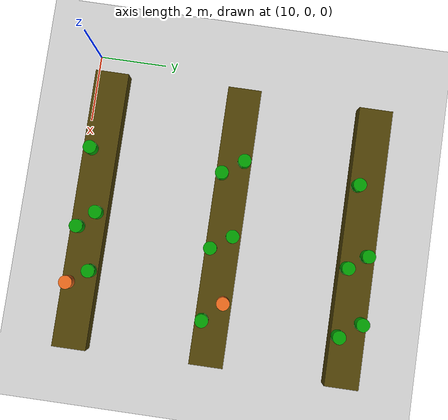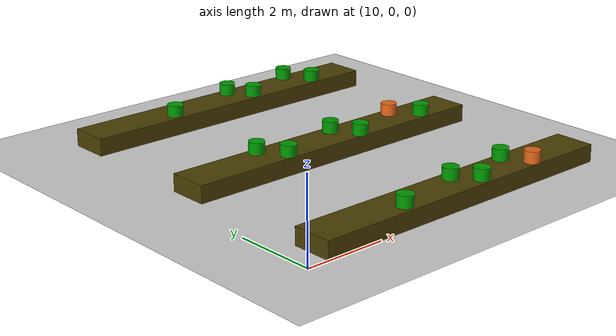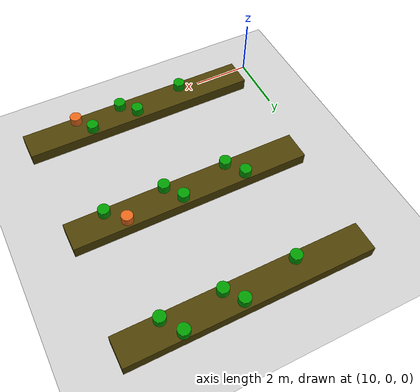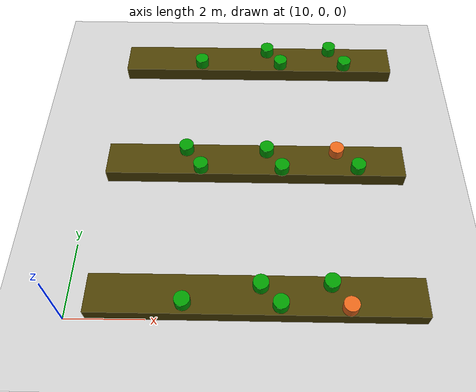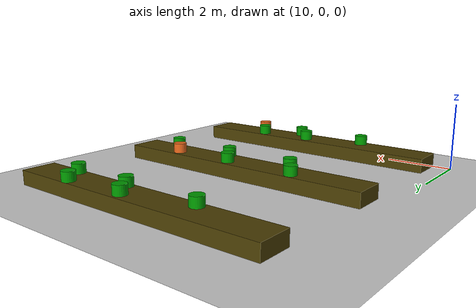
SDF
<sdf version="1.7">
 <world name="default">
  <model name="ground_plane">
   <static>1</static>
   <link name="link">
    <collision name="collision">
     <geometry><plane><normal>0 0 1</normal><size>100 100</size></plane></geometry>
     <surface><friction><ode><mu>100</mu><mu2>50</mu2></ode></friction></surface>
    </collision>
    <visual name="visual">
     <cast_shadows>0</cast_shadows>
     <geometry><plane><normal>0 0 1</normal><size>100 100</size></plane></geometry>
     <material>
      <script><uri>file://media/materials/scripts/gazebo.material</uri><name>Gazebo/Grey</name></script>
     </material>
    </visual>
   </link>
  </model>
  <model name="Test_Bench_brown_clone">
   <link name="link_1">
    <inertial>
     <mass>6.47546</mass>
     <inertia><ixx>0.639529</ixx><ixy>0</ixy><ixz>0</ixz><iyy>122.309</iyy><iyz>0</iyz><izz>122.749</izz></inertia>
    </inertial>
    <pose>0 4e-06 0 0 -0 0</pose>
    <visual name="visual">
     <geometry><box><size>8.26902 1 0.430283</size></box></geometry>
     <material>
      <lighting>1</lighting>
      <script><uri>file://media/materials/scripts/gazebo.material</uri><name>Gazebo/Grey</name></script>
      <shader type="pixel"><normal_map>__default__</normal_map></shader>
      <diffuse>0.298 0.247 0.016 1</diffuse>
      <ambient>0.3 0.3 0.3 1</ambient>
      <specular>0.01 0.01 0.01 1</specular>
      <emissive>0 0 0 1</emissive>
     </material>
    </visual>
    <collision name="collision">
     <geometry><box><size>8.26902 1 0.430283</size></box></geometry>
     <surface>
      <friction>
       <ode><mu>1</mu><mu2>1</mu2><fdir1>0 0 0</fdir1><slip1>0</slip1><slip2>0</slip2></ode>
       <torsional>
        <coefficient>1</coefficient>
        <patch_radius>0</patch_radius>
        <surface_radius>0</surface_radius>
        <use_patch_radius>1</use_patch_radius>
        <ode><slip>0</slip></ode>
       </torsional>
      </friction>
      <bounce><restitution_coefficient>0</restitution_coefficient><threshold>1e+06</threshold></bounce>
      <contact>
       <collide_without_contact>0</collide_without_contact>
       <collide_without_contact_bitmask>1</collide_without_contact_bitmask>
       <collide_bitmask>1</collide_bitmask>
       <ode>
        <soft_cfm>0</soft_cfm>
        <soft_erp>0.2</soft_erp>
        <kp>1e+13</kp>
        <kd>1</kd>
        <max_vel>0.01</max_vel>
        <min_depth>0</min_depth>
       </ode>
       <bullet>
        <split_impulse>1</split_impulse>
        <split_impulse_penetration_threshold>-0.01</split_impulse_penetration_threshold>
        <soft_cfm>0</soft_cfm>
        <soft_erp>0.2</soft_erp>
        <kp>1e+13</kp>
        <kd>1</kd>
       </bullet>
      </contact>
     </surface>
    </collision>
   </link>
   <static>0</static>
   <pose>14.6791 0.50719 0.213427 5.2e-05 -5e-06 -1e-05</pose>
  </model>
  <model name="Test_Bench_brown_clone_1">
   <link name="link_1">
    <inertial>
     <mass>6.47546</mass>
     <inertia><ixx>0.639529</ixx><ixy>0</ixy><ixz>0</ixz><iyy>122.309</iyy><iyz>0</iyz><izz>122.749</izz></inertia>
    </inertial>
    <pose>0 4e-06 0 0 -0 0</pose>
    <visual name="visual">
     <geometry><box><size>8.26902 1 0.430283</size></box></geometry>
     <material>
      <lighting>1</lighting>
      <script><uri>file://media/materials/scripts/gazebo.material</uri><name>Gazebo/Grey</name></script>
      <shader type="pixel"><normal_map>__default__</normal_map></shader>
      <diffuse>0.298 0.247 0.016 1</diffuse>
      <ambient>0.3 0.3 0.3 1</ambient>
      <specular>0.01 0.01 0.01 1</specular>
      <emissive>0 0 0 1</emissive>
     </material>
    </visual>
    <collision name="collision">
     <geometry><box><size>8.26902 1 0.430283</size></box></geometry>
     <surface>
      <friction>
       <ode><mu>1</mu><mu2>1</mu2><fdir1>0 0 0</fdir1><slip1>0</slip1><slip2>0</slip2></ode>
       <torsional>
        <coefficient>1</coefficient>
        <patch_radius>0</patch_radius>
        <surface_radius>0</surface_radius>
        <use_patch_radius>1</use_patch_radius>
        <ode><slip>0</slip></ode>
       </torsional>
      </friction>
      <bounce><restitution_coefficient>0</restitution_coefficient><threshold>1e+06</threshold></bounce>
      <contact>
       <collide_without_contact>0</collide_without_contact>
       <collide_without_contact_bitmask>1</collide_without_contact_bitmask>
       <collide_bitmask>1</collide_bitmask>
       <ode>
        <soft_cfm>0</soft_cfm>
        <soft_erp>0.2</soft_erp>
        <kp>1e+13</kp>
        <kd>1</kd>
        <max_vel>0.01</max_vel>
        <min_depth>0</min_depth>
       </ode>
       <bullet>
        <split_impulse>1</split_impulse>
        <split_impulse_penetration_threshold>-0.01</split_impulse_penetration_threshold>
        <soft_cfm>0</soft_cfm>
        <soft_erp>0.2</soft_erp>
        <kp>1e+13</kp>
        <kd>1</kd>
       </bullet>
      </contact>
     </surface>
    </collision>
   </link>
   <static>0</static>
   <pose>14.6227 4.52237 0.215141 0 -0 0</pose>
  </model>
  <model name="Test_Bench_brown_clone_3">
   <link name="link_1">
    <inertial>
     <mass>6.47546</mass>
     <inertia><ixx>0.639529</ixx><ixy>0</ixy><ixz>0</ixz><iyy>122.309</iyy><iyz>0</iyz><izz>122.749</izz></inertia>
    </inertial>
    <pose>0 4e-06 0 0 -0 0</pose>
    <visual name="visual">
     <geometry><box><size>8.26902 1 0.430283</size></box></geometry>
     <material>
      <lighting>1</lighting>
      <script><uri>file://media/materials/scripts/gazebo.material</uri><name>Gazebo/Grey</name></script>
      <shader type="pixel"><normal_map>__default__</normal_map></shader>
      <diffuse>0.298 0.247 0.016 1</diffuse>
      <ambient>0.3 0.3 0.3 1</ambient>
      <specular>0.01 0.01 0.01 1</specular>
      <emissive>0 0 0 1</emissive>
     </material>
    </visual>
    <collision name="collision">
     <geometry><box><size>8.26902 1 0.430283</size></box></geometry>
     <surface>
      <friction>
       <ode><mu>1</mu><mu2>1</mu2><fdir1>0 0 0</fdir1><slip1>0</slip1><slip2>0</slip2></ode>
       <torsional>
        <coefficient>1</coefficient>
        <patch_radius>0</patch_radius>
        <surface_radius>0</surface_radius>
        <use_patch_radius>1</use_patch_radius>
        <ode><slip>0</slip></ode>
       </torsional>
      </friction>
      <bounce><restitution_coefficient>0</restitution_coefficient><threshold>1e+06</threshold></bounce>
      <contact>
       <collide_without_contact>0</collide_without_contact>
       <collide_without_contact_bitmask>1</collide_without_contact_bitmask>
       <collide_bitmask>1</collide_bitmask>
       <ode>
        <soft_cfm>0</soft_cfm>
        <soft_erp>0.2</soft_erp>
        <kp>1e+13</kp>
        <kd>1</kd>
        <max_vel>0.01</max_vel>
        <min_depth>0</min_depth>
       </ode>
       <bullet>
        <split_impulse>1</split_impulse>
        <split_impulse_penetration_threshold>-0.01</split_impulse_penetration_threshold>
        <soft_cfm>0</soft_cfm>
        <soft_erp>0.2</soft_erp>
        <kp>1e+13</kp>
        <kd>1</kd>
       </bullet>
      </contact>
     </surface>
    </collision>
   </link>
   <static>0</static>
   <pose>14.6865 8.49522 0.21379 5.3e-05 -3e-06 8e-06</pose>
  </model>
  <model name="Test_pot_orange_clone">
   <link name="link_0">
    <inertial>
     <mass>0.044841</mass>
     <inertia>
      <ixx>0.00074807</ixx>
      <ixy>0</ixy>
      <ixz>0</ixz>
      <iyy>0.00074807</iyy>
      <iyz>0</iyz>
      <izz>0.00086495</izz>
     </inertia>
    </inertial>
    <pose>3e-06 1e-06 -0 0 -0 0</pose>
    <visual name="visual">
     <geometry><cylinder><radius>0.196415</radius><length>0.290612</length></cylinder></geometry>
     <material>
      <lighting>1</lighting>
      <script><uri>file://media/materials/scripts/gazebo.material</uri><name>Gazebo/Grey</name></script>
      <shader type="pixel"><normal_map>__default__</normal_map></shader>
      <ambient>0.3 0.3 0.3 1</ambient>
      <diffuse>0.9 0.4 0.1 1</diffuse>
      <specular>0.01 0.01 0.01 1</specular>
      <emissive>0 0 0 1</emissive>
     </material>
    </visual>
    <collision name="collision">
     <geometry><cylinder><radius>0.196415</radius><length>0.290612</length></cylinder></geometry>
     <surface>
      <friction>
       <ode><mu>1</mu><mu2>1</mu2><fdir1>0 0 0</fdir1><slip1>0</slip1><slip2>0</slip2></ode>
       <torsional>
        <coefficient>1</coefficient>
        <patch_radius>0</patch_radius>
        <surface_radius>0</surface_radius>
        <use_patch_radius>1</use_patch_radius>
        <ode><slip>0</slip></ode>
       </torsional>
      </friction>
      <bounce><restitution_coefficient>0</restitution_coefficient><threshold>1e+06</threshold></bounce>
      <contact>
       <collide_without_contact>0</collide_without_contact>
       <collide_without_contact_bitmask>1</collide_without_contact_bitmask>
       <collide_bitmask>1</collide_bitmask>
       <ode>
        <soft_cfm>0</soft_cfm>
        <soft_erp>0.2</soft_erp>
        <kp>1e+13</kp>
        <kd>1</kd>
        <max_vel>0.01</max_vel>
        <min_depth>0</min_depth>
       </ode>
       <bullet>
        <split_impulse>1</split_impulse>
        <split_impulse_penetration_threshold>-0.01</split_impulse_penetration_threshold>
        <soft_cfm>0</soft_cfm>
        <soft_erp>0.2</soft_erp>
        <kp>1e+13</kp>
        <kd>1</kd>
       </bullet>
      </contact>
     </surface>
    </collision>
   </link>
   <static>0</static>
   <pose>16.9073 0.195438 0.575586 -1.3e-05 8e-06 0.003965</pose>
  </model>
  <model name="Test_pot_green_clone_2">
   <link name="link_0">
    <inertial>
     <mass>0.044841</mass>
     <inertia>
      <ixx>0.00074807</ixx>
      <ixy>0</ixy>
      <ixz>0</ixz>
      <iyy>0.00074807</iyy>
      <iyz>0</iyz>
      <izz>0.00086495</izz>
     </inertia>
    </inertial>
    <pose>3e-06 1e-06 0 0 -0 0</pose>
    <visual name="visual">
     <geometry><cylinder><radius>0.196415</radius><length>0.290612</length></cylinder></geometry>
     <material>
      <lighting>1</lighting>
      <script><uri>file://media/materials/scripts/gazebo.material</uri><name>Gazebo/Grey</name></script>
      <shader type="pixel"><normal_map>__default__</normal_map></shader>
      <diffuse>0 0.6 0 0</diffuse>
      <ambient>0.3 0.3 0.3 1</ambient>
      <specular>0.01 0.01 0.01 1</specular>
      <emissive>0 0 0 1</emissive>
     </material>
    </visual>
    <collision name="collision">
     <geometry><cylinder><radius>0.196415</radius><length>0.290612</length></cylinder></geometry>
     <surface>
      <friction>
       <ode><mu>1</mu><mu2>1</mu2><fdir1>0 0 0</fdir1><slip1>0</slip1><slip2>0</slip2></ode>
       <torsional>
        <coefficient>1</coefficient>
        <patch_radius>0</patch_radius>
        <surface_radius>0</surface_radius>
        <use_patch_radius>1</use_patch_radius>
        <ode><slip>0</slip></ode>
       </torsional>
      </friction>
      <bounce><restitution_coefficient>0</restitution_coefficient><threshold>1e+06</threshold></bounce>
      <contact>
       <collide_without_contact>0</collide_without_contact>
       <collide_without_contact_bitmask>1</collide_without_contact_bitmask>
       <collide_bitmask>1</collide_bitmask>
       <ode>
        <soft_cfm>0</soft_cfm>
        <soft_erp>0.2</soft_erp>
        <kp>1e+13</kp>
        <kd>1</kd>
        <max_vel>0.01</max_vel>
        <min_depth>0</min_depth>
       </ode>
       <bullet>
        <split_impulse>1</split_impulse>
        <split_impulse_penetration_threshold>-0.01</split_impulse_penetration_threshold>
        <soft_cfm>0</soft_cfm>
        <soft_erp>0.2</soft_erp>
        <kp>1e+13</kp>
        <kd>1</kd>
       </bullet>
      </contact>
     </surface>
    </collision>
   </link>
   <static>0</static>
   <pose>17.442 4.22593 0.57559 6e-06 -2e-06 0.004827</pose>
  </model>
  <model name="Test_pot_green_clone_3">
   <link name="link_0">
    <inertial>
     <mass>0.044841</mass>
     <inertia>
      <ixx>0.00074807</ixx>
      <ixy>0</ixy>
      <ixz>0</ixz>
      <iyy>0.00074807</iyy>
      <iyz>0</iyz>
      <izz>0.00086495</izz>
     </inertia>
    </inertial>
    <pose>3e-06 1e-06 0 0 -0 0</pose>
    <visual name="visual">
     <geometry><cylinder><radius>0.196415</radius><length>0.290612</length></cylinder></geometry>
     <material>
      <lighting>1</lighting>
      <script><uri>file://media/materials/scripts/gazebo.material</uri><name>Gazebo/Grey</name></script>
      <shader type="pixel"><normal_map>__default__</normal_map></shader>
      <diffuse>0 0.6 0 0</diffuse>
      <ambient>0.3 0.3 0.3 1</ambient>
      <specular>0.01 0.01 0.01 1</specular>
      <emissive>0 0 0 1</emissive>
     </material>
    </visual>
    <collision name="collision">
     <geometry><cylinder><radius>0.196415</radius><length>0.290612</length></cylinder></geometry>
     <surface>
      <friction>
       <ode><mu>1</mu><mu2>1</mu2><fdir1>0 0 0</fdir1><slip1>0</slip1><slip2>0</slip2></ode>
       <torsional>
        <coefficient>1</coefficient>
        <patch_radius>0</patch_radius>
        <surface_radius>0</surface_radius>
        <use_patch_radius>1</use_patch_radius>
        <ode><slip>0</slip></ode>
       </torsional>
      </friction>
      <bounce><restitution_coefficient>0</restitution_coefficient><threshold>1e+06</threshold></bounce>
      <contact>
       <collide_without_contact>0</collide_without_contact>
       <collide_without_contact_bitmask>1</collide_without_contact_bitmask>
       <collide_bitmask>1</collide_bitmask>
       <ode>
        <soft_cfm>0</soft_cfm>
        <soft_erp>0.2</soft_erp>
        <kp>1e+13</kp>
        <kd>1</kd>
        <max_vel>0.01</max_vel>
        <min_depth>0</min_depth>
       </ode>
       <bullet>
        <split_impulse>1</split_impulse>
        <split_impulse_penetration_threshold>-0.01</split_impulse_penetration_threshold>
        <soft_cfm>0</soft_cfm>
        <soft_erp>0.2</soft_erp>
        <kp>1e+13</kp>
        <kd>1</kd>
       </bullet>
      </contact>
     </surface>
    </collision>
   </link>
   <static>0</static>
   <pose>16.909 8.82075 0.57559 5e-06 -4e-06 0.002469</pose>
  </model>
  <model name="Test_pot_green_clone_10">
   <link name="link_0">
    <inertial>
     <mass>0.044841</mass>
     <inertia>
      <ixx>0.00074807</ixx>
      <ixy>0</ixy>
      <ixz>0</ixz>
      <iyy>0.00074807</iyy>
      <iyz>0</iyz>
      <izz>0.00086495</izz>
     </inertia>
    </inertial>
    <pose>3e-06 1e-06 0 0 -0 0</pose>
    <visual name="visual">
     <geometry><cylinder><radius>0.196415</radius><length>0.290612</length></cylinder></geometry>
     <material>
      <lighting>1</lighting>
      <script><uri>file://media/materials/scripts/gazebo.material</uri><name>Gazebo/Grey</name></script>
      <shader type="pixel"><normal_map>__default__</normal_map></shader>
      <diffuse>0 0.6 0 0</diffuse>
      <ambient>0.3 0.3 0.3 1</ambient>
      <specular>0.01 0.01 0.01 1</specular>
      <emissive>0 0 0 1</emissive>
     </material>
    </visual>
    <collision name="collision">
     <geometry><cylinder><radius>0.196415</radius><length>0.290612</length></cylinder></geometry>
     <surface>
      <friction>
       <ode><mu>1</mu><mu2>1</mu2><fdir1>0 0 0</fdir1><slip1>0</slip1><slip2>0</slip2></ode>
       <torsional>
        <coefficient>1</coefficient>
        <patch_radius>0</patch_radius>
        <surface_radius>0</surface_radius>
        <use_patch_radius>1</use_patch_radius>
        <ode><slip>0</slip></ode>
       </torsional>
      </friction>
      <bounce><restitution_coefficient>0</restitution_coefficient><threshold>1e+06</threshold></bounce>
      <contact>
       <collide_without_contact>0</collide_without_contact>
       <collide_without_contact_bitmask>1</collide_without_contact_bitmask>
       <collide_bitmask>1</collide_bitmask>
       <ode>
        <soft_cfm>0</soft_cfm>
        <soft_erp>0.2</soft_erp>
        <kp>1e+13</kp>
        <kd>1</kd>
        <max_vel>0.01</max_vel>
        <min_depth>0</min_depth>
       </ode>
       <bullet>
        <split_impulse>1</split_impulse>
        <split_impulse_penetration_threshold>-0.01</split_impulse_penetration_threshold>
        <soft_cfm>0</soft_cfm>
        <soft_erp>0.2</soft_erp>
        <kp>1e+13</kp>
        <kd>1</kd>
       </bullet>
      </contact>
     </surface>
    </collision>
   </link>
   <static>0</static>
   <pose>16.4972 0.784061 0.57559 -6e-06 0 0.006482</pose>
  </model>
  <model name="Test_pot_green_clone_4_clone_1">
   <link name="link_0">
    <inertial>
     <mass>0.044841</mass>
     <inertia>
      <ixx>0.00074807</ixx>
      <ixy>0</ixy>
      <ixz>0</ixz>
      <iyy>0.00074807</iyy>
      <iyz>0</iyz>
      <izz>0.00086495</izz>
     </inertia>
    </inertial>
    <pose>3e-06 1e-06 0 0 -0 0</pose>
    <visual name="visual">
     <geometry><cylinder><radius>0.196415</radius><length>0.290612</length></cylinder></geometry>
     <material>
      <lighting>1</lighting>
      <script><uri>file://media/materials/scripts/gazebo.material</uri><name>Gazebo/Grey</name></script>
      <shader type="pixel"><normal_map>__default__</normal_map></shader>
      <diffuse>0 0.6 0 0</diffuse>
      <ambient>0.3 0.3 0.3 1</ambient>
      <specular>0.01 0.01 0.01 1</specular>
      <emissive>0 0 0 1</emissive>
     </material>
    </visual>
    <collision name="collision">
     <geometry><cylinder><radius>0.196415</radius><length>0.290612</length></cylinder></geometry>
     <surface>
      <friction>
       <ode><mu>1</mu><mu2>1</mu2><fdir1>0 0 0</fdir1><slip1>0</slip1><slip2>0</slip2></ode>
       <torsional>
        <coefficient>1</coefficient>
        <patch_radius>0</patch_radius>
        <surface_radius>0</surface_radius>
        <use_patch_radius>1</use_patch_radius>
        <ode><slip>0</slip></ode>
       </torsional>
      </friction>
      <bounce><restitution_coefficient>0</restitution_coefficient><threshold>1e+06</threshold></bounce>
      <contact>
       <collide_without_contact>0</collide_without_contact>
       <collide_without_contact_bitmask>1</collide_without_contact_bitmask>
       <collide_bitmask>1</collide_bitmask>
       <ode>
        <soft_cfm>0</soft_cfm>
        <soft_erp>0.2</soft_erp>
        <kp>1e+13</kp>
        <kd>1</kd>
        <max_vel>0.01</max_vel>
        <min_depth>0</min_depth>
       </ode>
       <bullet>
        <split_impulse>1</split_impulse>
        <split_impulse_penetration_threshold>-0.01</split_impulse_penetration_threshold>
        <soft_cfm>0</soft_cfm>
        <soft_erp>0.2</soft_erp>
        <kp>1e+13</kp>
        <kd>1</kd>
       </bullet>
      </contact>
     </surface>
    </collision>
   </link>
   <static>0</static>
   <pose>17.3521 8.1914 0.575596 2.9e-05 -0 0.012641</pose>
  </model>
  <model name="Test_pot_orange_clone_clone_0">
   <link name="link_0">
    <inertial>
     <mass>0.044841</mass>
     <inertia>
      <ixx>0.00074807</ixx>
      <ixy>0</ixy>
      <ixz>0</ixz>
      <iyy>0.00074807</iyy>
      <iyz>0</iyz>
      <izz>0.00086495</izz>
     </inertia>
    </inertial>
    <pose>3e-06 1e-06 -0 0 -0 0</pose>
    <visual name="visual">
     <geometry><cylinder><radius>0.196415</radius><length>0.290612</length></cylinder></geometry>
     <material>
      <lighting>1</lighting>
      <script><uri>file://media/materials/scripts/gazebo.material</uri><name>Gazebo/Grey</name></script>
      <shader type="pixel"><normal_map>__default__</normal_map></shader>
      <ambient>0.3 0.3 0.3 1</ambient>
      <diffuse>0.9 0.4 0.1 1</diffuse>
      <specular>0.01 0.01 0.01 1</specular>
      <emissive>0 0 0 1</emissive>
     </material>
    </visual>
    <collision name="collision">
     <geometry><cylinder><radius>0.196415</radius><length>0.290612</length></cylinder></geometry>
     <surface>
      <friction>
       <ode><mu>1</mu><mu2>1</mu2><fdir1>0 0 0</fdir1><slip1>0</slip1><slip2>0</slip2></ode>
       <torsional>
        <coefficient>1</coefficient>
        <patch_radius>0</patch_radius>
        <surface_radius>0</surface_radius>
        <use_patch_radius>1</use_patch_radius>
        <ode><slip>0</slip></ode>
       </torsional>
      </friction>
      <bounce><restitution_coefficient>0</restitution_coefficient><threshold>1e+06</threshold></bounce>
      <contact>
       <collide_without_contact>0</collide_without_contact>
       <collide_without_contact_bitmask>1</collide_without_contact_bitmask>
       <collide_bitmask>1</collide_bitmask>
       <ode>
        <soft_cfm>0</soft_cfm>
        <soft_erp>0.2</soft_erp>
        <kp>1e+13</kp>
        <kd>1</kd>
        <max_vel>0.01</max_vel>
        <min_depth>0</min_depth>
       </ode>
       <bullet>
        <split_impulse>1</split_impulse>
        <split_impulse_penetration_threshold>-0.01</split_impulse_penetration_threshold>
        <soft_cfm>0</soft_cfm>
        <soft_erp>0.2</soft_erp>
        <kp>1e+13</kp>
        <kd>1</kd>
       </bullet>
      </contact>
     </surface>
    </collision>
   </link>
   <static>0</static>
   <pose>16.8777 4.76661 0.575592 1.6e-05 2e-06 0.004168</pose>
  </model>
  <model name="Test_pot_green_clone_15">
   <link name="link_0">
    <inertial>
     <mass>0.044841</mass>
     <inertia>
      <ixx>0.00074807</ixx>
      <ixy>0</ixy>
      <ixz>0</ixz>
      <iyy>0.00074807</iyy>
      <iyz>0</iyz>
      <izz>0.00086495</izz>
     </inertia>
    </inertial>
    <pose>3e-06 1e-06 0 0 -0 0</pose>
    <visual name="visual">
     <geometry><cylinder><radius>0.196415</radius><length>0.290612</length></cylinder></geometry>
     <material>
      <lighting>1</lighting>
      <script><uri>file://media/materials/scripts/gazebo.material</uri><name>Gazebo/Grey</name></script>
      <shader type="pixel"><normal_map>__default__</normal_map></shader>
      <diffuse>0 0.6 0 0</diffuse>
      <ambient>0.3 0.3 0.3 1</ambient>
      <specular>0.01 0.01 0.01 1</specular>
      <emissive>0 0 0 1</emissive>
     </material>
    </visual>
    <collision name="collision">
     <geometry><cylinder><radius>0.196415</radius><length>0.290612</length></cylinder></geometry>
     <surface>
      <friction>
       <ode><mu>1</mu><mu2>1</mu2><fdir1>0 0 0</fdir1><slip1>0</slip1><slip2>0</slip2></ode>
       <torsional>
        <coefficient>1</coefficient>
        <patch_radius>0</patch_radius>
        <surface_radius>0</surface_radius>
        <use_patch_radius>1</use_patch_radius>
        <ode><slip>0</slip></ode>
       </torsional>
      </friction>
      <bounce><restitution_coefficient>0</restitution_coefficient><threshold>1e+06</threshold></bounce>
      <contact>
       <collide_without_contact>0</collide_without_contact>
       <collide_without_contact_bitmask>1</collide_without_contact_bitmask>
       <collide_bitmask>1</collide_bitmask>
       <ode>
        <soft_cfm>0</soft_cfm>
        <soft_erp>0.2</soft_erp>
        <kp>1e+13</kp>
        <kd>1</kd>
        <max_vel>0.01</max_vel>
        <min_depth>0</min_depth>
       </ode>
       <bullet>
        <split_impulse>1</split_impulse>
        <split_impulse_penetration_threshold>-0.01</split_impulse_penetration_threshold>
        <soft_cfm>0</soft_cfm>
        <soft_erp>0.2</soft_erp>
        <kp>1e+13</kp>
        <kd>1</kd>
       </bullet>
      </contact>
     </surface>
    </collision>
   </link>
   <static>0</static>
   <pose>12.925 0.266999 0.575587 -9e-06 -2e-06 0.012252</pose>
  </model>
  <model name="Test_pot_green_clone_17">
   <link name="link_0">
    <inertial>
     <mass>0.044841</mass>
     <inertia>
      <ixx>0.00074807</ixx>
      <ixy>0</ixy>
      <ixz>0</ixz>
      <iyy>0.00074807</iyy>
      <iyz>0</iyz>
      <izz>0.00086495</izz>
     </inertia>
    </inertial>
    <pose>3e-06 1e-06 0 0 -0 0</pose>
    <visual name="visual">
     <geometry><cylinder><radius>0.196415</radius><length>0.290612</length></cylinder></geometry>
     <material>
      <lighting>1</lighting>
      <script><uri>file://media/materials/scripts/gazebo.material</uri><name>Gazebo/Grey</name></script>
      <shader type="pixel"><normal_map>__default__</normal_map></shader>
      <diffuse>0 0.6 0 0</diffuse>
      <ambient>0.3 0.3 0.3 1</ambient>
      <specular>0.01 0.01 0.01 1</specular>
      <emissive>0 0 0 1</emissive>
     </material>
    </visual>
    <collision name="collision">
     <geometry><cylinder><radius>0.196415</radius><length>0.290612</length></cylinder></geometry>
     <surface>
      <friction>
       <ode><mu>1</mu><mu2>1</mu2><fdir1>0 0 0</fdir1><slip1>0</slip1><slip2>0</slip2></ode>
       <torsional>
        <coefficient>1</coefficient>
        <patch_radius>0</patch_radius>
        <surface_radius>0</surface_radius>
        <use_patch_radius>1</use_patch_radius>
        <ode><slip>0</slip></ode>
       </torsional>
      </friction>
      <bounce><restitution_coefficient>0</restitution_coefficient><threshold>1e+06</threshold></bounce>
      <contact>
       <collide_without_contact>0</collide_without_contact>
       <collide_without_contact_bitmask>1</collide_without_contact_bitmask>
       <collide_bitmask>1</collide_bitmask>
       <ode>
        <soft_cfm>0</soft_cfm>
        <soft_erp>0.2</soft_erp>
        <kp>1e+13</kp>
        <kd>1</kd>
        <max_vel>0.01</max_vel>
        <min_depth>0</min_depth>
       </ode>
       <bullet>
        <split_impulse>1</split_impulse>
        <split_impulse_penetration_threshold>-0.01</split_impulse_penetration_threshold>
        <soft_cfm>0</soft_cfm>
        <soft_erp>0.2</soft_erp>
        <kp>1e+13</kp>
        <kd>1</kd>
       </bullet>
      </contact>
     </surface>
    </collision>
   </link>
   <static>0</static>
   <pose>15.2592 0.236475 0.575589 3e-06 -0 0.013283</pose>
  </model>
  <model name="Test_pot_green_clone_18">
   <link name="link_0">
    <inertial>
     <mass>0.044841</mass>
     <inertia>
      <ixx>0.00074807</ixx>
      <ixy>0</ixy>
      <ixz>0</ixz>
      <iyy>0.00074807</iyy>
      <iyz>0</iyz>
      <izz>0.00086495</izz>
     </inertia>
    </inertial>
    <pose>3e-06 1e-06 0 0 -0 0</pose>
    <visual name="visual">
     <geometry><cylinder><radius>0.196415</radius><length>0.290612</length></cylinder></geometry>
     <material>
      <lighting>1</lighting>
      <script><uri>file://media/materials/scripts/gazebo.material</uri><name>Gazebo/Grey</name></script>
      <shader type="pixel"><normal_map>__default__</normal_map></shader>
      <diffuse>0 0.6 0 0</diffuse>
      <ambient>0.3 0.3 0.3 1</ambient>
      <specular>0.01 0.01 0.01 1</specular>
      <emissive>0 0 0 1</emissive>
     </material>
    </visual>
    <collision name="collision">
     <geometry><cylinder><radius>0.196415</radius><length>0.290612</length></cylinder></geometry>
     <surface>
      <friction>
       <ode><mu>1</mu><mu2>1</mu2><fdir1>0 0 0</fdir1><slip1>0</slip1><slip2>0</slip2></ode>
       <torsional>
        <coefficient>1</coefficient>
        <patch_radius>0</patch_radius>
        <surface_radius>0</surface_radius>
        <use_patch_radius>1</use_patch_radius>
        <ode><slip>0</slip></ode>
       </torsional>
      </friction>
      <bounce><restitution_coefficient>0</restitution_coefficient><threshold>1e+06</threshold></bounce>
      <contact>
       <collide_without_contact>0</collide_without_contact>
       <collide_without_contact_bitmask>1</collide_without_contact_bitmask>
       <collide_bitmask>1</collide_bitmask>
       <ode>
        <soft_cfm>0</soft_cfm>
        <soft_erp>0.2</soft_erp>
        <kp>1e+13</kp>
        <kd>1</kd>
        <max_vel>0.01</max_vel>
        <min_depth>0</min_depth>
       </ode>
       <bullet>
        <split_impulse>1</split_impulse>
        <split_impulse_penetration_threshold>-0.01</split_impulse_penetration_threshold>
        <soft_cfm>0</soft_cfm>
        <soft_erp>0.2</soft_erp>
        <kp>1e+13</kp>
        <kd>1</kd>
       </bullet>
      </contact>
     </surface>
    </collision>
   </link>
   <static>0</static>
   <pose>14.7839 0.719454 0.575595 -3.1e-05 -1e-05 0.012774</pose>
  </model>
  <model name="Test_pot_green_clone_19">
   <link name="link_0">
    <inertial>
     <mass>0.044841</mass>
     <inertia>
      <ixx>0.00074807</ixx>
      <ixy>0</ixy>
      <ixz>0</ixz>
      <iyy>0.00074807</iyy>
      <iyz>0</iyz>
      <izz>0.00086495</izz>
     </inertia>
    </inertial>
    <pose>3e-06 1e-06 0 0 -0 0</pose>
    <visual name="visual">
     <geometry><cylinder><radius>0.196415</radius><length>0.290612</length></cylinder></geometry>
     <material>
      <lighting>1</lighting>
      <script><uri>file://media/materials/scripts/gazebo.material</uri><name>Gazebo/Grey</name></script>
      <shader type="pixel"><normal_map>__default__</normal_map></shader>
      <diffuse>0 0.6 0 0</diffuse>
      <ambient>0.3 0.3 0.3 1</ambient>
      <specular>0.01 0.01 0.01 1</specular>
      <emissive>0 0 0 1</emissive>
     </material>
    </visual>
    <collision name="collision">
     <geometry><cylinder><radius>0.196415</radius><length>0.290612</length></cylinder></geometry>
     <surface>
      <friction>
       <ode><mu>1</mu><mu2>1</mu2><fdir1>0 0 0</fdir1><slip1>0</slip1><slip2>0</slip2></ode>
       <torsional>
        <coefficient>1</coefficient>
        <patch_radius>0</patch_radius>
        <surface_radius>0</surface_radius>
        <use_patch_radius>1</use_patch_radius>
        <ode><slip>0</slip></ode>
       </torsional>
      </friction>
      <bounce><restitution_coefficient>0</restitution_coefficient><threshold>1e+06</threshold></bounce>
      <contact>
       <collide_without_contact>0</collide_without_contact>
       <collide_without_contact_bitmask>1</collide_without_contact_bitmask>
       <collide_bitmask>1</collide_bitmask>
       <ode>
        <soft_cfm>0</soft_cfm>
        <soft_erp>0.2</soft_erp>
        <kp>1e+13</kp>
        <kd>1</kd>
        <max_vel>0.01</max_vel>
        <min_depth>0</min_depth>
       </ode>
       <bullet>
        <split_impulse>1</split_impulse>
        <split_impulse_penetration_threshold>-0.01</split_impulse_penetration_threshold>
        <soft_cfm>0</soft_cfm>
        <soft_erp>0.2</soft_erp>
        <kp>1e+13</kp>
        <kd>1</kd>
       </bullet>
      </contact>
     </surface>
    </collision>
   </link>
   <static>0</static>
   <pose>15.3499 4.17291 0.575561 1.1e-05 -2e-06 0.011247</pose>
  </model>
  <model name="Test_pot_green_clone_20">
   <link name="link_0">
    <inertial>
     <mass>0.044841</mass>
     <inertia>
      <ixx>0.00074807</ixx>
      <ixy>0</ixy>
      <ixz>0</ixz>
      <iyy>0.00074807</iyy>
      <iyz>0</iyz>
      <izz>0.00086495</izz>
     </inertia>
    </inertial>
    <pose>3e-06 1e-06 0 0 -0 0</pose>
    <visual name="visual">
     <geometry><cylinder><radius>0.196415</radius><length>0.290612</length></cylinder></geometry>
     <material>
      <lighting>1</lighting>
      <script><uri>file://media/materials/scripts/gazebo.material</uri><name>Gazebo/Grey</name></script>
      <shader type="pixel"><normal_map>__default__</normal_map></shader>
      <diffuse>0 0.6 0 0</diffuse>
      <ambient>0.3 0.3 0.3 1</ambient>
      <specular>0.01 0.01 0.01 1</specular>
      <emissive>0 0 0 1</emissive>
     </material>
    </visual>
    <collision name="collision">
     <geometry><cylinder><radius>0.196415</radius><length>0.290612</length></cylinder></geometry>
     <surface>
      <friction>
       <ode><mu>1</mu><mu2>1</mu2><fdir1>0 0 0</fdir1><slip1>0</slip1><slip2>0</slip2></ode>
       <torsional>
        <coefficient>1</coefficient>
        <patch_radius>0</patch_radius>
        <surface_radius>0</surface_radius>
        <use_patch_radius>1</use_patch_radius>
        <ode><slip>0</slip></ode>
       </torsional>
      </friction>
      <bounce><restitution_coefficient>0</restitution_coefficient><threshold>1e+06</threshold></bounce>
      <contact>
       <collide_without_contact>0</collide_without_contact>
       <collide_without_contact_bitmask>1</collide_without_contact_bitmask>
       <collide_bitmask>1</collide_bitmask>
       <ode>
        <soft_cfm>0</soft_cfm>
        <soft_erp>0.2</soft_erp>
        <kp>1e+13</kp>
        <kd>1</kd>
        <max_vel>0.01</max_vel>
        <min_depth>0</min_depth>
       </ode>
       <bullet>
        <split_impulse>1</split_impulse>
        <split_impulse_penetration_threshold>-0.01</split_impulse_penetration_threshold>
        <soft_cfm>0</soft_cfm>
        <soft_erp>0.2</soft_erp>
        <kp>1e+13</kp>
        <kd>1</kd>
       </bullet>
      </contact>
     </surface>
    </collision>
   </link>
   <static>0</static>
   <pose>14.9311 4.77162 0.5756 -3e-05 -2e-06 0.010632</pose>
  </model>
  <model name="Test_pot_green_clone_21">
   <link name="link_0">
    <inertial>
     <mass>0.044841</mass>
     <inertia>
      <ixx>0.00074807</ixx>
      <ixy>0</ixy>
      <ixz>0</ixz>
      <iyy>0.00074807</iyy>
      <iyz>0</iyz>
      <izz>0.00086495</izz>
     </inertia>
    </inertial>
    <pose>3e-06 1e-06 0 0 -0 0</pose>
    <visual name="visual">
     <geometry><cylinder><radius>0.196415</radius><length>0.290612</length></cylinder></geometry>
     <material>
      <lighting>1</lighting>
      <script><uri>file://media/materials/scripts/gazebo.material</uri><name>Gazebo/Grey</name></script>
      <shader type="pixel"><normal_map>__default__</normal_map></shader>
      <diffuse>0 0.6 0 0</diffuse>
      <ambient>0.3 0.3 0.3 1</ambient>
      <specular>0.01 0.01 0.01 1</specular>
      <emissive>0 0 0 1</emissive>
     </material>
    </visual>
    <collision name="collision">
     <geometry><cylinder><radius>0.196415</radius><length>0.290612</length></cylinder></geometry>
     <surface>
      <friction>
       <ode><mu>1</mu><mu2>1</mu2><fdir1>0 0 0</fdir1><slip1>0</slip1><slip2>0</slip2></ode>
       <torsional>
        <coefficient>1</coefficient>
        <patch_radius>0</patch_radius>
        <surface_radius>0</surface_radius>
        <use_patch_radius>1</use_patch_radius>
        <ode><slip>0</slip></ode>
       </torsional>
      </friction>
      <bounce><restitution_coefficient>0</restitution_coefficient><threshold>1e+06</threshold></bounce>
      <contact>
       <collide_without_contact>0</collide_without_contact>
       <collide_without_contact_bitmask>1</collide_without_contact_bitmask>
       <collide_bitmask>1</collide_bitmask>
       <ode>
        <soft_cfm>0</soft_cfm>
        <soft_erp>0.2</soft_erp>
        <kp>1e+13</kp>
        <kd>1</kd>
        <max_vel>0.01</max_vel>
        <min_depth>0</min_depth>
       </ode>
       <bullet>
        <split_impulse>1</split_impulse>
        <split_impulse_penetration_threshold>-0.01</split_impulse_penetration_threshold>
        <soft_cfm>0</soft_cfm>
        <soft_erp>0.2</soft_erp>
        <kp>1e+13</kp>
        <kd>1</kd>
       </bullet>
      </contact>
     </surface>
    </collision>
   </link>
   <static>0</static>
   <pose>13.1191 4.19617 0.575566 3.8e-05 -4e-06 0.010358</pose>
  </model>
  <model name="Test_pot_green_clone_22">
   <link name="link_0">
    <inertial>
     <mass>0.044841</mass>
     <inertia>
      <ixx>0.00074807</ixx>
      <ixy>0</ixy>
      <ixz>0</ixz>
      <iyy>0.00074807</iyy>
      <iyz>0</iyz>
      <izz>0.00086495</izz>
     </inertia>
    </inertial>
    <pose>3e-06 1e-06 0 0 -0 0</pose>
    <visual name="visual">
     <geometry><cylinder><radius>0.196415</radius><length>0.290612</length></cylinder></geometry>
     <material>
      <lighting>1</lighting>
      <script><uri>file://media/materials/scripts/gazebo.material</uri><name>Gazebo/Grey</name></script>
      <shader type="pixel"><normal_map>__default__</normal_map></shader>
      <diffuse>0 0.6 0 0</diffuse>
      <ambient>0.3 0.3 0.3 1</ambient>
      <specular>0.01 0.01 0.01 1</specular>
      <emissive>0 0 0 1</emissive>
     </material>
    </visual>
    <collision name="collision">
     <geometry><cylinder><radius>0.196415</radius><length>0.290612</length></cylinder></geometry>
     <surface>
      <friction>
       <ode><mu>1</mu><mu2>1</mu2><fdir1>0 0 0</fdir1><slip1>0</slip1><slip2>0</slip2></ode>
       <torsional>
        <coefficient>1</coefficient>
        <patch_radius>0</patch_radius>
        <surface_radius>0</surface_radius>
        <use_patch_radius>1</use_patch_radius>
        <ode><slip>0</slip></ode>
       </torsional>
      </friction>
      <bounce><restitution_coefficient>0</restitution_coefficient><threshold>1e+06</threshold></bounce>
      <contact>
       <collide_without_contact>0</collide_without_contact>
       <collide_without_contact_bitmask>1</collide_without_contact_bitmask>
       <collide_bitmask>1</collide_bitmask>
       <ode>
        <soft_cfm>0</soft_cfm>
        <soft_erp>0.2</soft_erp>
        <kp>1e+13</kp>
        <kd>1</kd>
        <max_vel>0.01</max_vel>
        <min_depth>0</min_depth>
       </ode>
       <bullet>
        <split_impulse>1</split_impulse>
        <split_impulse_penetration_threshold>-0.01</split_impulse_penetration_threshold>
        <soft_cfm>0</soft_cfm>
        <soft_erp>0.2</soft_erp>
        <kp>1e+13</kp>
        <kd>1</kd>
       </bullet>
      </contact>
     </surface>
    </collision>
   </link>
   <static>0</static>
   <pose>12.6879 4.80846 0.575593 -1.4e-05 -1.8e-05 0.012039</pose>
  </model>
  <model name="Test_pot_green_clone_23">
   <link name="link_0">
    <inertial>
     <mass>0.044841</mass>
     <inertia>
      <ixx>0.00074807</ixx>
      <ixy>0</ixy>
      <ixz>0</ixz>
      <iyy>0.00074807</iyy>
      <iyz>0</iyz>
      <izz>0.00086495</izz>
     </inertia>
    </inertial>
    <pose>3e-06 1e-06 0 0 -0 0</pose>
    <visual name="visual">
     <geometry><cylinder><radius>0.196415</radius><length>0.290612</length></cylinder></geometry>
     <material>
      <lighting>1</lighting>
      <script><uri>file://media/materials/scripts/gazebo.material</uri><name>Gazebo/Grey</name></script>
      <shader type="pixel"><normal_map>__default__</normal_map></shader>
      <diffuse>0 0.6 0 0</diffuse>
      <ambient>0.3 0.3 0.3 1</ambient>
      <specular>0.01 0.01 0.01 1</specular>
      <emissive>0 0 0 1</emissive>
     </material>
    </visual>
    <collision name="collision">
     <geometry><cylinder><radius>0.196415</radius><length>0.290612</length></cylinder></geometry>
     <surface>
      <friction>
       <ode><mu>1</mu><mu2>1</mu2><fdir1>0 0 0</fdir1><slip1>0</slip1><slip2>0</slip2></ode>
       <torsional>
        <coefficient>1</coefficient>
        <patch_radius>0</patch_radius>
        <surface_radius>0</surface_radius>
        <use_patch_radius>1</use_patch_radius>
        <ode><slip>0</slip></ode>
       </torsional>
      </friction>
      <bounce><restitution_coefficient>0</restitution_coefficient><threshold>1e+06</threshold></bounce>
      <contact>
       <collide_without_contact>0</collide_without_contact>
       <collide_without_contact_bitmask>1</collide_without_contact_bitmask>
       <collide_bitmask>1</collide_bitmask>
       <ode>
        <soft_cfm>0</soft_cfm>
        <soft_erp>0.2</soft_erp>
        <kp>1e+13</kp>
        <kd>1</kd>
        <max_vel>0.01</max_vel>
        <min_depth>0</min_depth>
       </ode>
       <bullet>
        <split_impulse>1</split_impulse>
        <split_impulse_penetration_threshold>-0.01</split_impulse_penetration_threshold>
        <soft_cfm>0</soft_cfm>
        <soft_erp>0.2</soft_erp>
        <kp>1e+13</kp>
        <kd>1</kd>
       </bullet>
      </contact>
     </surface>
    </collision>
   </link>
   <static>0</static>
   <pose>12.9116 8.22793 0.57559 3e-06 -0 0.011686</pose>
  </model>
  <model name="Test_pot_green_clone_25">
   <link name="link_0">
    <inertial>
     <mass>0.044841</mass>
     <inertia>
      <ixx>0.00074807</ixx>
      <ixy>0</ixy>
      <ixz>0</ixz>
      <iyy>0.00074807</iyy>
      <iyz>0</iyz>
      <izz>0.00086495</izz>
     </inertia>
    </inertial>
    <pose>3e-06 1e-06 0 0 -0 0</pose>
    <visual name="visual">
     <geometry><cylinder><radius>0.196415</radius><length>0.290612</length></cylinder></geometry>
     <material>
      <lighting>1</lighting>
      <script><uri>file://media/materials/scripts/gazebo.material</uri><name>Gazebo/Grey</name></script>
      <shader type="pixel"><normal_map>__default__</normal_map></shader>
      <diffuse>0 0.6 0 0</diffuse>
      <ambient>0.3 0.3 0.3 1</ambient>
      <specular>0.01 0.01 0.01 1</specular>
      <emissive>0 0 0 1</emissive>
     </material>
    </visual>
    <collision name="collision">
     <geometry><cylinder><radius>0.196415</radius><length>0.290612</length></cylinder></geometry>
     <surface>
      <friction>
       <ode><mu>1</mu><mu2>1</mu2><fdir1>0 0 0</fdir1><slip1>0</slip1><slip2>0</slip2></ode>
       <torsional>
        <coefficient>1</coefficient>
        <patch_radius>0</patch_radius>
        <surface_radius>0</surface_radius>
        <use_patch_radius>1</use_patch_radius>
        <ode><slip>0</slip></ode>
       </torsional>
      </friction>
      <bounce><restitution_coefficient>0</restitution_coefficient><threshold>1e+06</threshold></bounce>
      <contact>
       <collide_without_contact>0</collide_without_contact>
       <collide_without_contact_bitmask>1</collide_without_contact_bitmask>
       <collide_bitmask>1</collide_bitmask>
       <ode>
        <soft_cfm>0</soft_cfm>
        <soft_erp>0.2</soft_erp>
        <kp>1e+13</kp>
        <kd>1</kd>
        <max_vel>0.01</max_vel>
        <min_depth>0</min_depth>
       </ode>
       <bullet>
        <split_impulse>1</split_impulse>
        <split_impulse_penetration_threshold>-0.01</split_impulse_penetration_threshold>
        <soft_cfm>0</soft_cfm>
        <soft_erp>0.2</soft_erp>
        <kp>1e+13</kp>
        <kd>1</kd>
       </bullet>
      </contact>
     </surface>
    </collision>
   </link>
   <static>0</static>
   <pose>15.3639 8.20607 0.575594 2.3e-05 -1e-06 0.01175</pose>
  </model>
  <model name="Test_pot_green_clone_26">
   <link name="link_0">
    <inertial>
     <mass>0.044841</mass>
     <inertia>
      <ixx>0.00074807</ixx>
      <ixy>0</ixy>
      <ixz>0</ixz>
      <iyy>0.00074807</iyy>
      <iyz>0</iyz>
      <izz>0.00086495</izz>
     </inertia>
    </inertial>
    <pose>3e-06 1e-06 0 0 -0 0</pose>
    <visual name="visual">
     <geometry><cylinder><radius>0.196415</radius><length>0.290612</length></cylinder></geometry>
     <material>
      <lighting>1</lighting>
      <script><uri>file://media/materials/scripts/gazebo.material</uri><name>Gazebo/Grey</name></script>
      <shader type="pixel"><normal_map>__default__</normal_map></shader>
      <diffuse>0 0.6 0 0</diffuse>
      <ambient>0.3 0.3 0.3 1</ambient>
      <specular>0.01 0.01 0.01 1</specular>
      <emissive>0 0 0 1</emissive>
     </material>
    </visual>
    <collision name="collision">
     <geometry><cylinder><radius>0.196415</radius><length>0.290612</length></cylinder></geometry>
     <surface>
      <friction>
       <ode><mu>1</mu><mu2>1</mu2><fdir1>0 0 0</fdir1><slip1>0</slip1><slip2>0</slip2></ode>
       <torsional>
        <coefficient>1</coefficient>
        <patch_radius>0</patch_radius>
        <surface_radius>0</surface_radius>
        <use_patch_radius>1</use_patch_radius>
        <ode><slip>0</slip></ode>
       </torsional>
      </friction>
      <bounce><restitution_coefficient>0</restitution_coefficient><threshold>1e+06</threshold></bounce>
      <contact>
       <collide_without_contact>0</collide_without_contact>
       <collide_without_contact_bitmask>1</collide_without_contact_bitmask>
       <collide_bitmask>1</collide_bitmask>
       <ode>
        <soft_cfm>0</soft_cfm>
        <soft_erp>0.2</soft_erp>
        <kp>1e+13</kp>
        <kd>1</kd>
        <max_vel>0.01</max_vel>
        <min_depth>0</min_depth>
       </ode>
       <bullet>
        <split_impulse>1</split_impulse>
        <split_impulse_penetration_threshold>-0.01</split_impulse_penetration_threshold>
        <soft_cfm>0</soft_cfm>
        <soft_erp>0.2</soft_erp>
        <kp>1e+13</kp>
        <kd>1</kd>
       </bullet>
      </contact>
     </surface>
    </collision>
   </link>
   <static>0</static>
   <pose>14.9496 8.74446 0.575591 -8e-06 -0 0.011597</pose>
  </model>
 </world>
</sdf>
